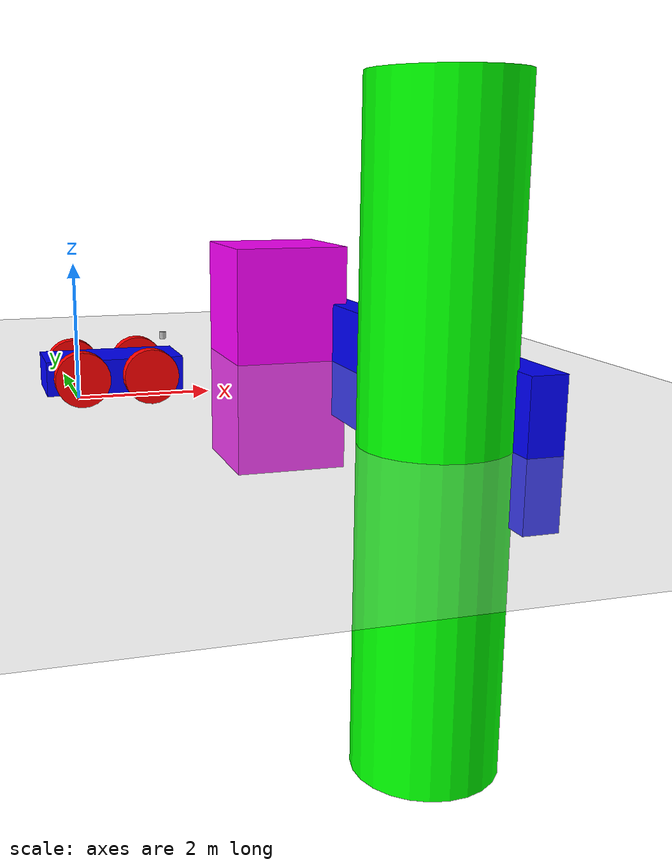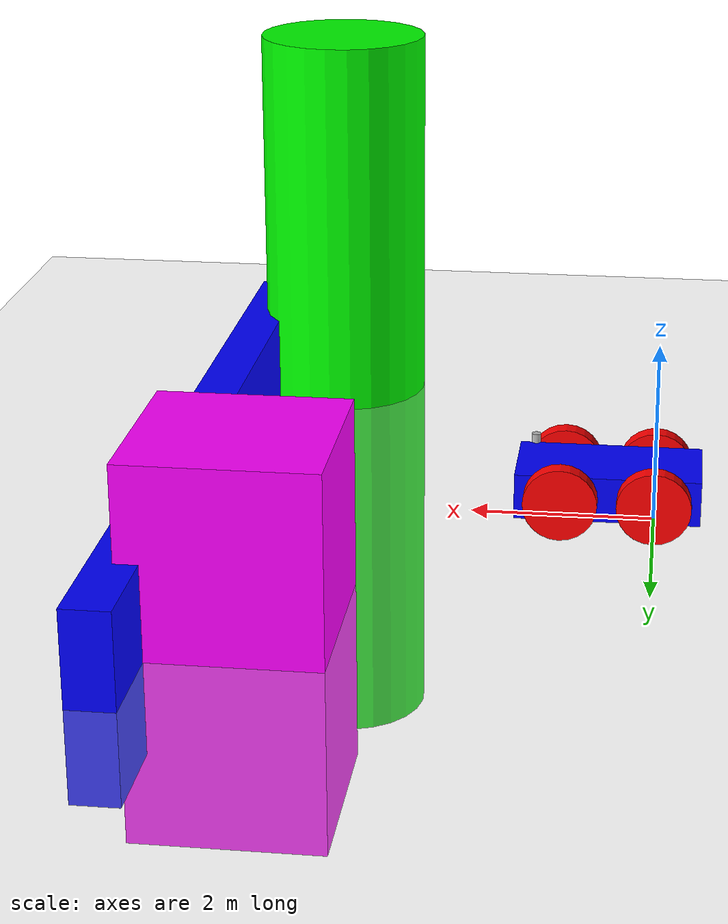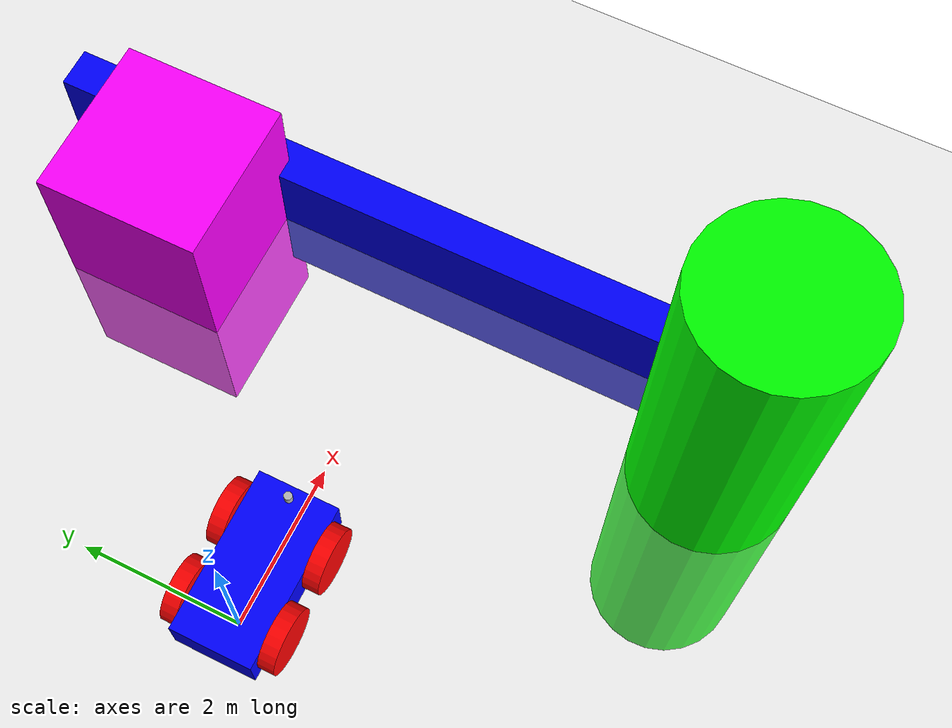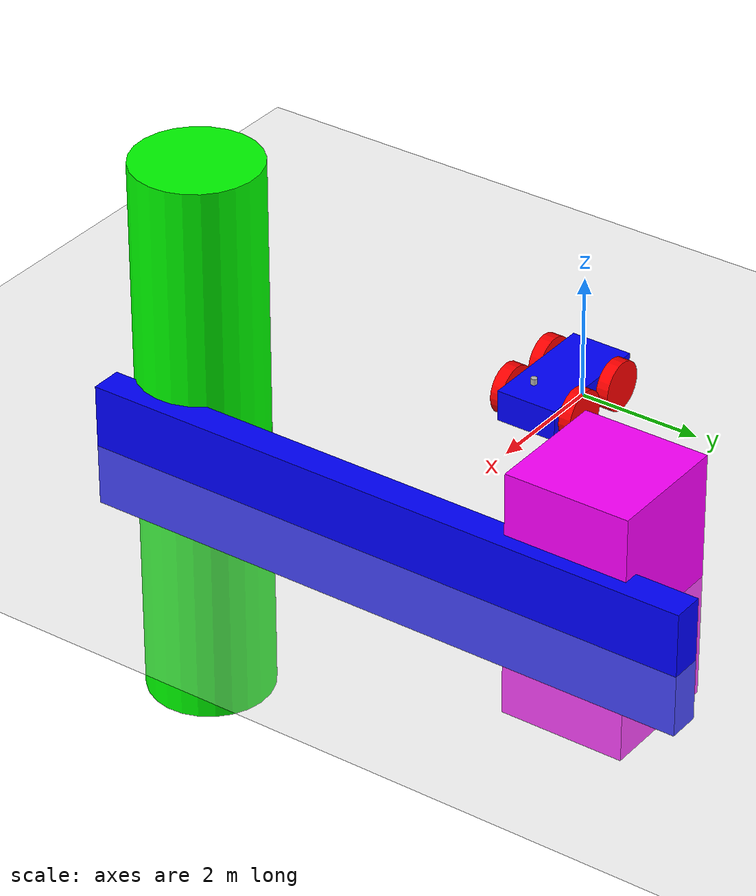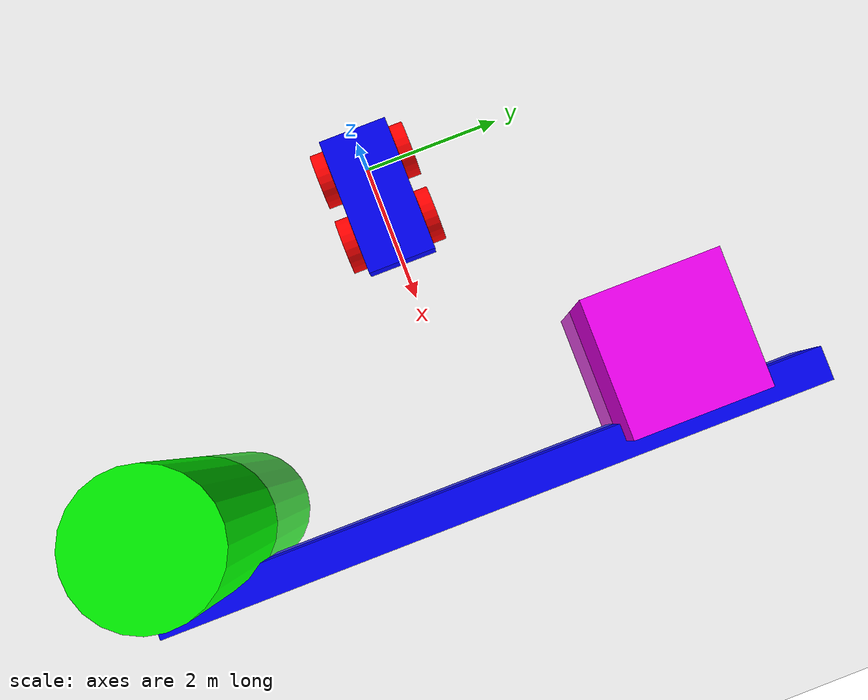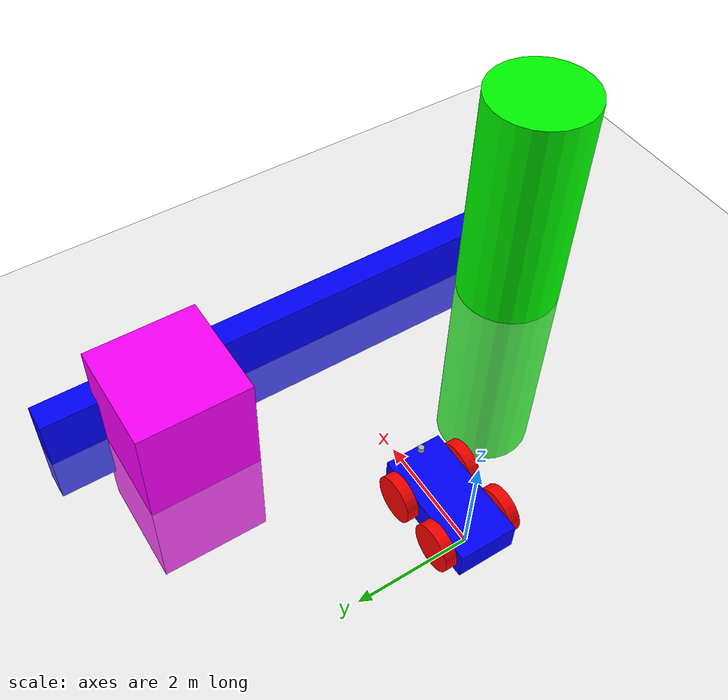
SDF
<?xml version="1.0" ?>
<sdf version="1.10">
    <world name="car_world">
        <plugin
      filename="gz-sim-sensors-system"
      name="gz::sim::systems::Sensors">
      <render_engine>ogre2</render_engine>
    </plugin>
        <physics name="1ms" type="ignored">
            <max_step_size>0.001</max_step_size>
            <real_time_factor>1.0</real_time_factor>
        </physics>
        <plugin
            filename="gz-sim-physics-system"
            name="gz::sim::systems::Physics">
        </plugin>
        <plugin
            filename="gz-sim-user-commands-system"
            name="gz::sim::systems::UserCommands">
        </plugin>
        <plugin
            filename="gz-sim-scene-broadcaster-system"
            name="gz::sim::systems::SceneBroadcaster">
        </plugin>

        <light type="directional" name="sun">
            <cast_shadows>true</cast_shadows>
            <pose>0 0 10 0 0 0</pose>
            <diffuse>0.8 0.8 0.8 1</diffuse>
            <specular>0.2 0.2 0.2 1</specular>
            <attenuation>
                <range>1000</range>
                <constant>0.9</constant>
                <linear>0.01</linear>
                <quadratic>0.001</quadratic>
            </attenuation>
            <direction>-0.5 0.1 -0.9</direction>
        </light>

        <model name="ground_plane">
            <static>true</static>
            <link name="link">
                <collision name="collision">
                <geometry>
                    <plane>
                    <normal>0 0 1</normal>
                    </plane>
                </geometry>
                </collision>
                <visual name="visual">
                <geometry>
                    <plane>
                    <normal>0 0 1</normal>
                    <size>100 100</size>
                    </plane>
                </geometry>
                <material>
                    <ambient>0.8 0.8 0.8 1</ambient>
                    <diffuse>0.8 0.8 0.8 1</diffuse>
                    <specular>0.8 0.8 0.8 1</specular>
                </material>
                </visual>
            </link>
        </model>
        <model name='wall'>
    <static>true</static>
    <pose>5 0 0 0 0 0</pose><!--pose relative to the world-->
    <link name='box'>
        <visual name='visual'>
            <geometry>
                <box>
                    <size>0.5 10.0 2.0</size>
                </box>
            </geometry>
            <!--let's add color to our link-->
            <material>
                <ambient>0.0 0.0 1.0 1</ambient>
                <diffuse>0.0 0.0 1.0 1</diffuse>
                <specular>0.0 0.0 1.0 1</specular>
            </material>
        </visual>
        <collision name='collision'>
            <geometry>
                <box>
                    <size>0.5 10.0 2.0</size>
                </box>
            </geometry>
        </collision>
    </link>
</model>
        <model name='box'>
    <static>true</static>
    <pose>4 3 0 0 0 0</pose><!--pose relative to the world-->
    <link name='box'>
        <visual name='visual'>
            <geometry>
                <box>
                    <size>2 2.0 4.0</size>
                </box>
            </geometry>
            <!--let's add color to our link-->
            <material>
                <ambient>1.0 0.0 1.0 1</ambient>
                <diffuse>1.0 0.0 1.0 1</diffuse>
                <specular>1.0 0.0 1.0 1</specular>
            </material>
        </visual>
        <collision name='collision'>
            <geometry>
                <box>
                    <size>2 12.0 4.0</size>
                </box>
            </geometry>
        </collision>
    </link>
</model>
 <model name='cylinder'>
    <static>true</static>
    <pose>4 -4 0 0 0 7</pose><!--pose relative to the world-->
    <link name='cylinder'>
        <visual name='visual'>
            <geometry>
                <cylinder>
    <radius>1.0</radius>
    <length>9.0</length>
                </cylinder>
            </geometry>
            <!--let's add color to our link-->
            <material>
                <ambient>0 1 0 1</ambient>
                <diffuse>0 1 0.0 1</diffuse>
                <specular>0 1 0.0 1</specular>
            </material>
        </visual>
        <collision name='collision'>
            <geometry>
                <cylinder>
    <radius>1.0</radius>
    <length>9.0</length>
                </cylinder>
            </geometry>
        </collision>
    </link>
</model>
        <model name='vehicle_blue' canonical_link='chassis'>
        <frame name="lidar_frame" attached_to='chassis'>
    <pose>0.8 0 0.5 0 0 0</pose>
</frame>
<plugin filename="gz-sim-diff-drive-system"
        name="gz::sim::systems::DiffDrive">
    <left_joint>left_wheel_joint</left_joint>
    <right_joint>right_wheel_joint</right_joint>
    <left_joint>left_wheel_front_joint</left_joint>
    <right_joint>right_wheel_front_joint</right_joint>
    <wheel_separation>1.2</wheel_separation>
    <wheel_radius>0.4</wheel_radius>
    <odom_publish_frequency>1</odom_publish_frequency>
    <topic>cmd_vel</topic>
</plugin>
<link name='lidar_link'>
    <pose relative_to='chassis'>0.8 0 0.5 0 0 0</pose>
    <inertial>
        <mass>0.1</mass>
        <inertia>
            <ixx>0.000166667</ixx>
            <iyy>0.000166667</iyy>
            <izz>0.000166667</izz>
        </inertia>
    </inertial>
    <visual name='visual'>
        <geometry>
            <cylinder>
                <radius>0.05</radius>
                <length>0.1</length>
            </cylinder>
        </geometry>
    </visual>
    <sensor name='gpu_lidar' type='gpu_lidar'>
        <topic>lidar</topic>
        <update_rate>10</update_rate>
        <lidar>
            <scan>
                <horizontal>
                    <samples>640</samples>
                    <resolution>1</resolution>
                    <min_angle>-1.396263</min_angle>
                    <max_angle>1.396263</max_angle>
                </horizontal>
            </scan>
            <range>
                <min>0.08</min>
                <max>10.0</max>
            </range>
        </lidar>
        <visualize>true</visualize>
    </sensor>
</link>

<joint name='lidar_joint' type='fixed'>
    <parent>chassis</parent>
    <child>lidar_link</child>
</joint>
    <pose relative_to='world'>0 0 0 0 0 0</pose>
        <link name='chassis'>
        <pose relative_to='__model__'>0.5 0 0.4 0 0 0</pose>
            <inertial> <!--inertial properties of the link mass, inertia matix-->
        <mass>1.14395</mass>
        <inertia>
            <ixx>0.095329</ixx>
            <ixy>0</ixy>
            <ixz>0</ixz>
            <iyy>0.381317</iyy>
            <iyz>0</iyz>
            <izz>0.476646</izz>
        </inertia>
    </inertial>
        <visual name='visual'>
        <geometry>
            <box>
                <size>2.0 1.0 0.5</size>
            </box>
        </geometry>
        <!--let's add color to our link-->
        <material>
            <ambient>0.0 0.0 1.0 1</ambient>
            <diffuse>0.0 0.0 1.0 1</diffuse>
            <specular>0.0 0.0 1.0 1</specular>
        </material>
    </visual>
            <collision name='collision'>
            <geometry>
                <box>
                    <size>2.0 1.0 0.5</size>
                </box>
            </geometry>
        </collision>
    </link>
    <link name='left_wheel'>
    <pose relative_to="chassis">-0.5 0.6 0 -1.5707 0 0</pose>
    <inertial>
        <mass>1</mass>
        <inertia>
            <ixx>0.043333</ixx>
            <ixy>0</ixy>
            <ixz>0</ixz>
            <iyy>0.043333</iyy>
            <iyz>0</iyz>
            <izz>0.08</izz>
        </inertia>
    </inertial>
        <visual name='visual'>
        <geometry>
            <cylinder>
                <radius>0.4</radius>
                <length>0.2</length>
            </cylinder>
        </geometry>
        <material>
            <ambient>1.0 0.0 0.0 1</ambient>
            <diffuse>1.0 0.0 0.0 1</diffuse>
            <specular>1.0 0.0 0.0 1</specular>
        </material>
    </visual>
    <collision name='collision'>
        <geometry>
            <cylinder>
                <radius>0.4</radius>
                <length>0.2</length>
            </cylinder>
        </geometry>
    </collision>
</link>
<!--The same as left wheel but with different position-->
<link name='right_wheel'>
    <pose relative_to="chassis">-0.5 -0.6 0 -1.5707 0 0</pose> <!--angles are in radian-->
    <inertial>
        <mass>1</mass>
        <inertia>
            <ixx>0.043333</ixx>
            <ixy>0</ixy>
            <ixz>0</ixz>
            <iyy>0.043333</iyy>
            <iyz>0</iyz>
            <izz>0.08</izz>
        </inertia>
    </inertial>
    <visual name='visual'>
        <geometry>
            <cylinder>
                <radius>0.4</radius>
                <length>0.2</length>
            </cylinder>
        </geometry>
        <material>
            <ambient>1.0 0.0 0.0 1</ambient>
            <diffuse>1.0 0.0 0.0 1</diffuse>
            <specular>1.0 0.0 0.0 1</specular>
        </material>
    </visual>
    <collision name='collision'>
        <geometry>
            <cylinder>
                <radius>0.4</radius>
                <length>0.2</length>
            </cylinder>
        </geometry>
    </collision>
</link>

<link name='right_wheel_front'>
    <pose relative_to="chassis">0.5 -0.6 0 -1.5707 0 0</pose> <!--angles are in radian-->
    <inertial>
        <mass>1</mass>
        <inertia>
            <ixx>0.043333</ixx>
            <ixy>0</ixy>
            <ixz>0</ixz>
            <iyy>0.043333</iyy>
            <iyz>0</iyz>
            <izz>0.08</izz>
        </inertia>
    </inertial>
    <visual name='visual'>
        <geometry>
            <cylinder>
                <radius>0.4</radius>
                <length>0.2</length>
            </cylinder>
        </geometry>
        <material>
            <ambient>1.0 0.0 0.0 1</ambient>
            <diffuse>1.0 0.0 0.0 1</diffuse>
            <specular>1.0 0.0 0.0 1</specular>
        </material>
    </visual>
    <collision name='collision'>
        <geometry>
            <cylinder>
                <radius>0.4</radius>
                <length>0.2</length>
            </cylinder>
        </geometry>
    </collision>
</link>

<link name='left_wheel_front'>
    <pose relative_to="chassis">0.5 0.6 0 -1.5707 0 0</pose> <!--angles are in radian-->
    <inertial>
        <mass>1</mass>
        <inertia>
            <ixx>0.043333</ixx>
            <ixy>0</ixy>
            <ixz>0</ixz>
            <iyy>0.043333</iyy>
            <iyz>0</iyz>
            <izz>0.08</izz>
        </inertia>
    </inertial>
    <visual name='visual'>
        <geometry>
            <cylinder>
                <radius>0.4</radius>
                <length>0.2</length>
            </cylinder>
        </geometry>
        <material>
            <ambient>1.0 0.0 0.0 1</ambient>
            <diffuse>1.0 0.0 0.0 1</diffuse>
            <specular>1.0 0.0 0.0 1</specular>
        </material>
    </visual>
    <collision name='collision'>
        <geometry>
            <cylinder>
                <radius>0.4</radius>
                <length>0.2</length>
            </cylinder>
        </geometry>
    </collision>
</link>

<joint name='left_wheel_joint' type='revolute'>
    <pose relative_to='left_wheel'/>
        <parent>chassis</parent>
    <child>left_wheel</child>
        <axis>
        <xyz expressed_in='__model__'>0 1 0</xyz> <!--can be defined as any frame or even arbitrary frames-->
        <limit>
            <lower>-1.79769e+308</lower>    <!--negative infinity-->
            <upper>1.79769e+308</upper>     <!--positive infinity-->
        </limit>
    </axis>
</joint>
<joint name='right_wheel_joint' type='revolute'>
    <pose relative_to='right_wheel'/>
    <parent>chassis</parent>
    <child>right_wheel</child>
    <axis>
        <xyz expressed_in='__model__'>0 1 0</xyz>
        <limit>
            <lower>-1.79769e+308</lower>    <!--negative infinity-->
            <upper>1.79769e+308</upper>     <!--positive infinity-->
        </limit>
    </axis>
</joint>
<joint name='right_wheel_front_joint' type='revolute'>
    <pose relative_to='right_wheel_front'/>
    <parent>chassis</parent>
    <child>right_wheel_front</child>
    <axis>
        <xyz expressed_in='__model__'>0 1 0</xyz>
        <limit>
            <lower>-1.79769e+308</lower>    <!--negative infinity-->
            <upper>1.79769e+308</upper>     <!--positive infinity-->
        </limit>
    </axis>
</joint>
<joint name='left_wheel_front_joint' type='revolute'>
    <pose relative_to='left_wheel_front'/>
    <parent>chassis</parent>
    <child>left_wheel_front</child>
    <axis>
        <xyz expressed_in='__model__'>0 1 0</xyz>
        <limit>
            <lower>-1.79769e+308</lower>    <!--negative infinity-->
            <upper>1.79769e+308</upper>     <!--positive infinity-->
        </limit>
    </axis>
</joint>
</model>
    </world>
</sdf>
